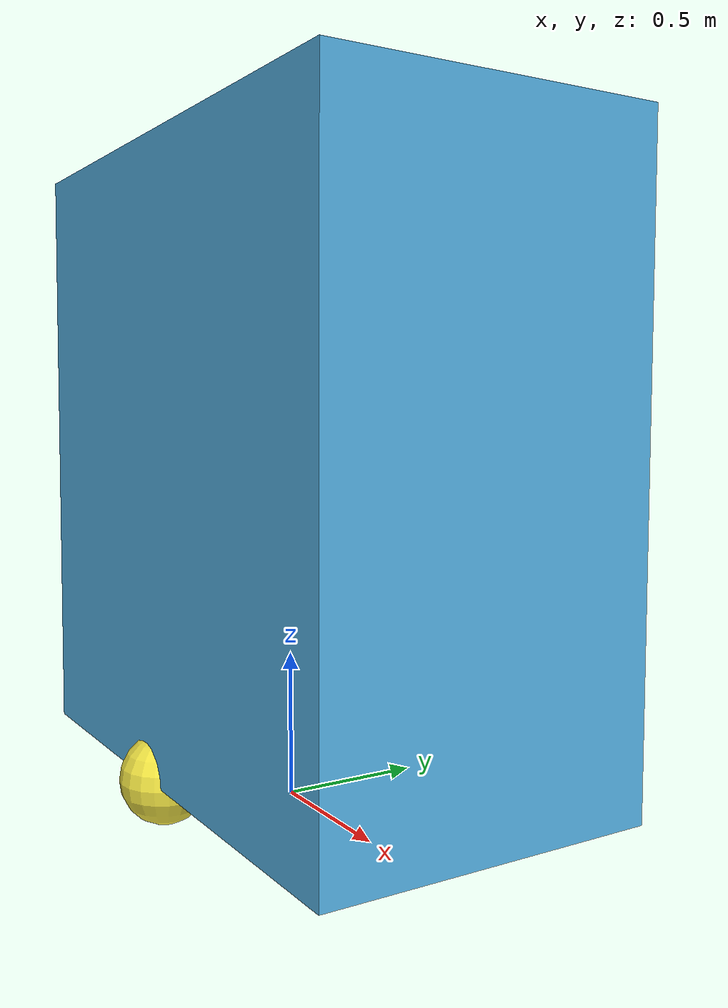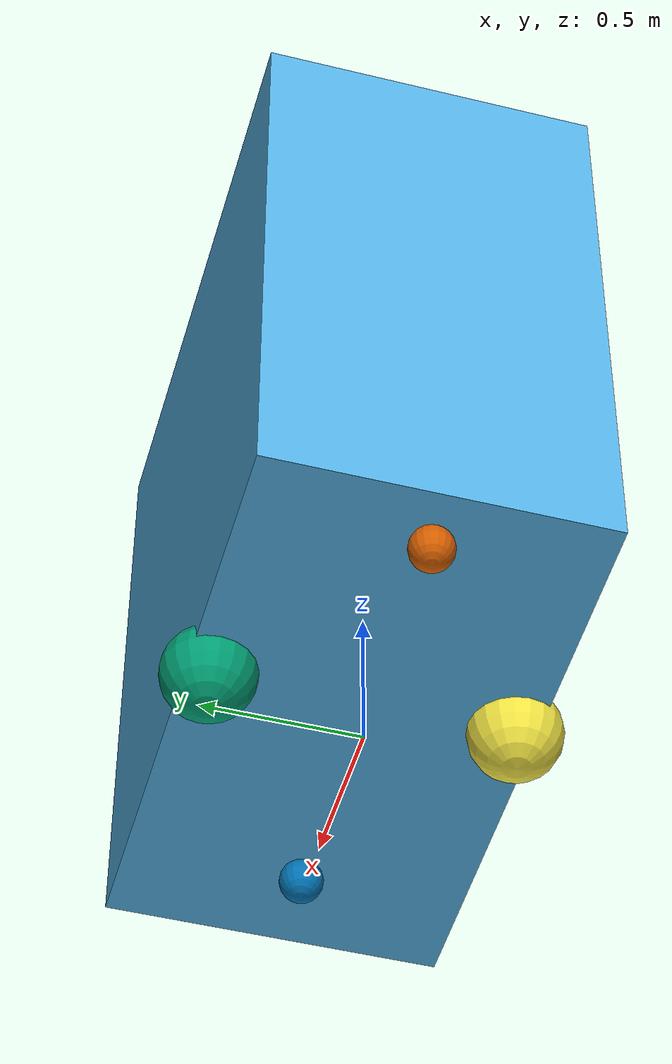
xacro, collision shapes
<?xml version="1.0"?>
<robot name="mecanum_lift_robot" xmlns:xacro="http://www.ros.org/wiki/xacro">

  <xacro:arg name="ns" default="robot2"/>

  <!-- ===== 외형 메시 (deco_forklift 재사용) ===== -->
  <xacro:property name="lift_mesh" value="model://Forklift/base_visual.glb"/>
  <xacro:property name="lift_scale" value="1 1 1"/>
  <xacro:property name="mesh_roll" value="0"/>
  <xacro:property name="mesh_z_offset" value="0"/>
  <xacro:property name="mesh_yaw" value="-1.5708"/>

  <xacro:property name="body_len"    value="1.95"/>
  <xacro:property name="body_wid"    value="1.09"/>
  <xacro:property name="body_x"      value="0.125"/>  <!-- 차체 중심의 x 오프셋 -->
  <xacro:property name="body_top"    value="2.2"/>
  <!-- 지면과 차체 바닥 사이 간격. 0 으로 두면 collision 박스가 바닥에 먼저 닿아
       바퀴가 뜨고 로봇이 굴러가지 않는다. -->
  <xacro:property name="ground_gap"  value="0.15"/>

  <!-- ===== 구동 파라미터 ===== -->
  <xacro:property name="wheel_radius" value="0.15"/>
  <xacro:property name="wheel_width"  value="0.12"/>
  <xacro:property name="wheel_sep"    value="0.95"/>
  <xacro:property name="caster_radius" value="0.07"/>
  <!-- 캐스터도 차체 안쪽으로. 0.95 였을 때 뒤 캐스터(-0.95)가 차체 뒤끝(-0.85)
       밖으로 나가 허공에 떠 있었다. 앞뒤 짧은 쪽(0.85)에서 여유를 둔 값이다. -->
  <xacro:property name="caster_x"      value="0.72"/>

  <xacro:property name="base_mass"   value="25.0"/>
  <xacro:property name="wheel_mass"  value="1.5"/>

  <!-- ===== 관성 매크로 ===== -->
  <!-- px/py/pz 는 무게중심 위치(링크 원점 기준). 기본 0 이라 이 값을 안 주면
       예전처럼 무게중심이 링크 원점에 놓인다. 관성 텐서는 박스 중심 기준 값이므로
       그 중심을 어디에 둘지를 여기서 정하는 셈이다. -->
  <xacro:macro name="box_inertia" params="m x y z px:=0 py:=0 pz:=0">
    <inertial>
      <origin xyz="${px} ${py} ${pz}" rpy="0 0 0"/>
      <mass value="${m}"/>
      <inertia ixx="${m*(y*y+z*z)/12.0}" ixy="0" ixz="0"
               iyy="${m*(x*x+z*z)/12.0}" iyz="0"
               izz="${m*(x*x+y*y)/12.0}"/>
    </inertial>
  </xacro:macro>
  <xacro:macro name="cyl_inertia" params="m r l">
    <inertial>
      <mass value="${m}"/>
      <inertia ixx="${m*(3*r*r+l*l)/12.0}" ixy="0" ixz="0"
               iyy="${m*(3*r*r+l*l)/12.0}" iyz="0"
               izz="${m*r*r/2.0}"/>
    </inertial>
  </xacro:macro>
  <xacro:macro name="sphere_inertia" params="m r">
    <inertial>
      <mass value="${m}"/>
      <inertia ixx="${2*m*r*r/5.0}" ixy="0" ixz="0"
               iyy="${2*m*r*r/5.0}" iyz="0" izz="${2*m*r*r/5.0}"/>
    </inertial>
  </xacro:macro>

  <!-- ===== base_link: 질량 없는 루트(참조 프레임 전용) ===== -->
  <link name="base_link"/>

  <joint name="base_to_chassis_joint" type="fixed">
    <parent link="base_link"/>
    <child  link="chassis"/>
    <origin xyz="0 0 0" rpy="0 0 0"/>
  </joint>

  <!-- ===== chassis (지면 기준, 원점 z=0) ===== -->
  <link name="chassis">
    <visual>
      <origin xyz="0 0 ${mesh_z_offset}" rpy="${mesh_roll} 0 ${mesh_yaw}"/>
      <geometry>
        <mesh filename="${lift_mesh}" scale="${lift_scale}"/>
      </geometry>
    </visual>
    <!-- collision 박스를 실측 치수로. 바닥에서 ground_gap 만큼 띄우고 body_top 까지
         올린다 — 위끝을 2.2 로 잡으면 지게차 마스트까지 포함되므로, 로봇이 선반
         아래를 통과하던 게 이제 막힐 수 있다(예전 박스는 높이 0.6 뿐이었다). -->
    <xacro:property name="body_hgt" value="${body_top - ground_gap}"/>
    <collision>
      <origin xyz="${body_x} 0 ${ground_gap + body_hgt/2}" rpy="0 0 0"/>
      <geometry><box size="${body_len} ${body_wid} ${body_hgt}"/></geometry>
    </collision>
    <xacro:box_inertia m="${base_mass}" x="${body_len}" y="${body_wid}" z="${body_hgt}"
                       px="${body_x}" pz="0.3"/>
  </link>

  <!-- ===== 구동 바퀴 매크로 ===== -->
  <xacro:macro name="drive_wheel" params="prefix side_y">
    <link name="${prefix}_wheel">
      <collision>
        <geometry><sphere radius="${wheel_radius}"/></geometry>
      </collision>
      <xacro:cyl_inertia m="${wheel_mass}" r="${wheel_radius}" l="${wheel_width}"/>
    </link>
    <gazebo reference="${prefix}_wheel">
      <collision>
        <surface>
          <friction>
            <ode>
              <mu>1.0</mu>
              <mu2>1.0</mu2>
            </ode>
          </friction>
          <contact>
            <ode>
              <min_depth>0.001</min_depth>
              <kp>1e6</kp>
              <kd>100</kd>
            </ode>
          </contact>
        </surface>
      </collision>
    </gazebo>
    <joint name="${prefix}_wheel_joint" type="continuous">
      <parent link="chassis"/>
      <child  link="${prefix}_wheel"/>
      <origin xyz="0 ${side_y} ${wheel_radius - 0.01}" rpy="0 0 0"/>
      <axis xyz="0 1 0"/>
    </joint>
  </xacro:macro>
  <xacro:drive_wheel prefix="left"  side_y="${ wheel_sep/2}"/>
  <xacro:drive_wheel prefix="right" side_y="${-wheel_sep/2}"/>

  <!-- ===== 캐스터 매크로 (앞/뒤 지지, 마찰 0) ===== -->
  <xacro:macro name="caster" params="prefix px">
    <link name="${prefix}_caster">
      <collision>
        <geometry><sphere radius="${caster_radius}"/></geometry>
      </collision>
      <xacro:sphere_inertia m="0.5" r="${caster_radius}"/>
    </link>
    <joint name="${prefix}_caster_joint" type="fixed">
      <parent link="chassis"/>
      <child  link="${prefix}_caster"/>
      <origin xyz="${px} 0 ${caster_radius - 0.01}" rpy="0 0 0"/>
    </joint>
    <gazebo reference="${prefix}_caster">
      <collision>
        <surface>
          <friction>
            <ode>
              <mu>0.0</mu>
              <mu2>0.0</mu2>
            </ode>
          </friction>
          <contact>
            <ode>
              <min_depth>0.001</min_depth>
              <kp>1e6</kp>
              <kd>100</kd>
            </ode>
          </contact>
        </surface>
      </collision>
    </gazebo>
  </xacro:macro>
  <xacro:caster prefix="front" px="${ caster_x}"/>
  <xacro:caster prefix="back"  px="${-caster_x}"/>

  <!-- ===== 카메라 링크 ===== -->
  <link name="camera_link">
    <xacro:box_inertia m="0.05" x="0.02" y="0.06" z="0.02"/>
  </link>
  <joint name="camera_joint" type="fixed">
    <parent link="chassis"/>
    <child  link="camera_link"/>
    <origin xyz="1.0 0 1.0" rpy="0 0 0"/>
  </joint>

  <!-- ===== 라이다 링크 ===== -->
  <link name="lidar_link">
    <xacro:box_inertia m="0.1" x="0.05" y="0.05" z="0.05"/>
  </link>
  <joint name="lidar_joint" type="fixed">
    <parent link="chassis"/>
    <child  link="lidar_link"/>
    <origin xyz="1.25 0 0.35" rpy="0 0 0"/>
  </joint>

  <!-- ================= Gazebo (gz-sim / Harmonic) ================= -->
  <gazebo>
    <plugin filename="gz-sim-diff-drive-system" name="gz::sim::systems::DiffDrive">
      <left_joint>left_wheel_joint</left_joint>
      <right_joint>right_wheel_joint</right_joint>
      <wheel_separation>${wheel_sep}</wheel_separation>
      <wheel_radius>${wheel_radius}</wheel_radius>
      <odom_publish_frequency>30</odom_publish_frequency>
      <max_linear_acceleration>1.5</max_linear_acceleration>
      <topic>$(arg ns)/cmd_vel</topic>
      <odom_topic>$(arg ns)/odom</odom_topic>
      <frame_id>$(arg ns)/odom</frame_id>
      <child_frame_id>$(arg ns)/base_link</child_frame_id>
      <tf_topic>$(arg ns)/tf</tf_topic>
    </plugin>
    <plugin filename="gz-sim-joint-state-publisher-system"
            name="gz::sim::systems::JointStatePublisher">
      <topic>$(arg ns)/joint_states</topic>
    </plugin>
    <!-- odom(바퀴 적산치)은 슬립이 있으면 실제 위치와 어긋난다. 웨이포인트
         추종은 절대 좌표(월드 프레임) 기준이라야 하므로, 적산 오차 없는
         진짜(ground-truth) pose를 별도로 발행해 그걸 쓴다. -->
    <plugin filename="gz-sim-pose-publisher-system"
            name="gz::sim::systems::PosePublisher">
      <publish_model_pose>true</publish_model_pose>
      <publish_link_pose>false</publish_link_pose>
      <publish_collision_pose>false</publish_collision_pose>
      <publish_visual_pose>false</publish_visual_pose>
      <publish_sensor_pose>false</publish_sensor_pose>
      <use_pose_vector_msg>false</use_pose_vector_msg>
      <static_publisher>false</static_publisher>
      <update_frequency>30</update_frequency>
    </plugin>
  </gazebo>

  <gazebo reference="base_link">
    <publish_pose>true</publish_pose>
  </gazebo>

  <gazebo reference="camera_link">
    <sensor name="sim_camera" type="camera">
      <always_on>1</always_on>
      <update_rate>15</update_rate>
      <!-- 다른 센서/플러그인(scan, cmd_vel, odom)과 동일하게 ns로 분리 — 이전엔 그냥
           camera/image로 전역 토픽이라 로봇이 여러 대면 충돌할 뻔했다. -->
      <topic>$(arg ns)/camera/image</topic>
      <!-- gz_frame_id 를 반드시 넣는다: 없으면 ROS 로 넘어온 Image 의 frame_id 가
           "mecanum_lift_robot/camera_link/sim_camera" 같은 gz 내부 스코프 이름이 되어
           tf 조회(카메라 좌표 → base_link)가 실패한다. -->
      <!-- ns 접두어는 위 DiffDrive frame_id 와 같은 이유 — rsp 의 frame_prefix 가
           만드는 이름(robot2/camera_link)과 글자 하나까지 같아야 tf 조회가 붙는다. -->
      <gz_frame_id>$(arg ns)/camera_link</gz_frame_id>
      <camera>
        <horizontal_fov>1.047</horizontal_fov>
        <image><width>640</width><height>480</height></image>
        <clip><near>0.1</near><far>100.0</far></clip>
      </camera>
    </sensor>
  </gazebo>

  <!-- update_rate/samples를 낮게: gpu_lidar는 스캔마다 씬을 렌더링해서 GPU 가속
       없이는 부하가 크다 (docs/gazebo-control-guide.md §7 권장값). -->
  <!-- 라이다가 real-time factor 저하의 주범인지 확인해봤는데 아니었다(꺼도 배속
       그대로) — 병목은 월드의 소품 개수(충돌 계산량) 쪽으로 보인다. -->
  <gazebo reference="lidar_link">
    <sensor name="lidar" type="gpu_lidar">
      <topic>$(arg ns)/scan</topic>
      <!-- 카메라와 같은 이유. 없으면 LaserScan 의 frame_id 가 gz 내부 스코프 이름이 되어
           Nav2 가 tf 조회에 실패한다. -->
      <gz_frame_id>$(arg ns)/lidar_link</gz_frame_id>
      <update_rate>10</update_rate>
      <lidar>
        <scan>
          <horizontal>
            <samples>720</samples>
            <min_angle>-1.5708</min_angle>
            <max_angle>1.5708</max_angle>
          </horizontal>
        </scan>
        <range>
          <min>0.12</min>
          <max>20.0</max>
        </range>
      </lidar>
      <always_on>true</always_on>
      <visualize>true</visualize>
    </sensor>
  </gazebo>

</robot>
